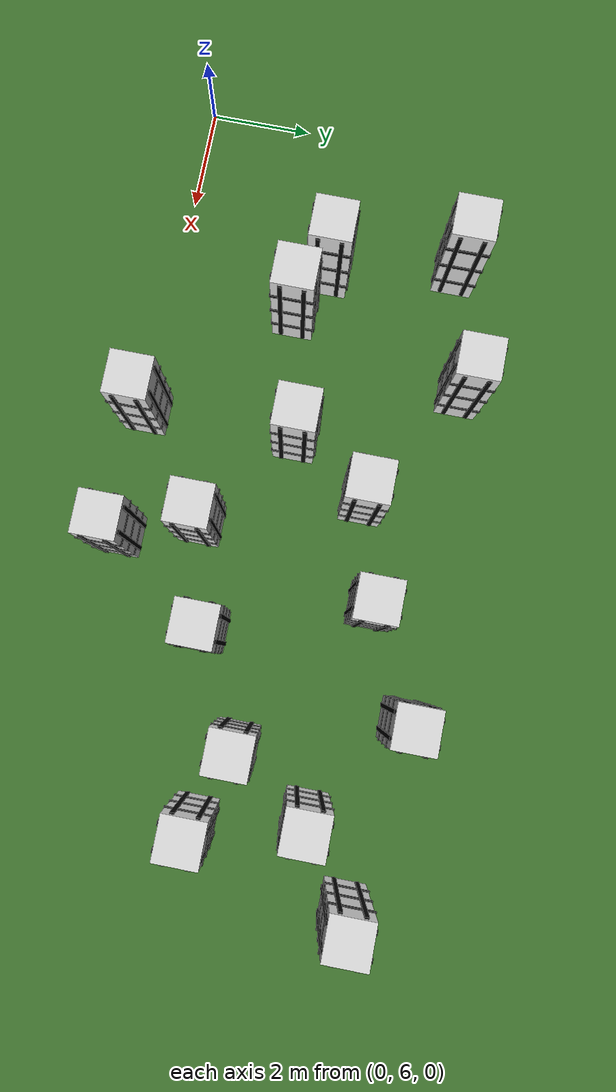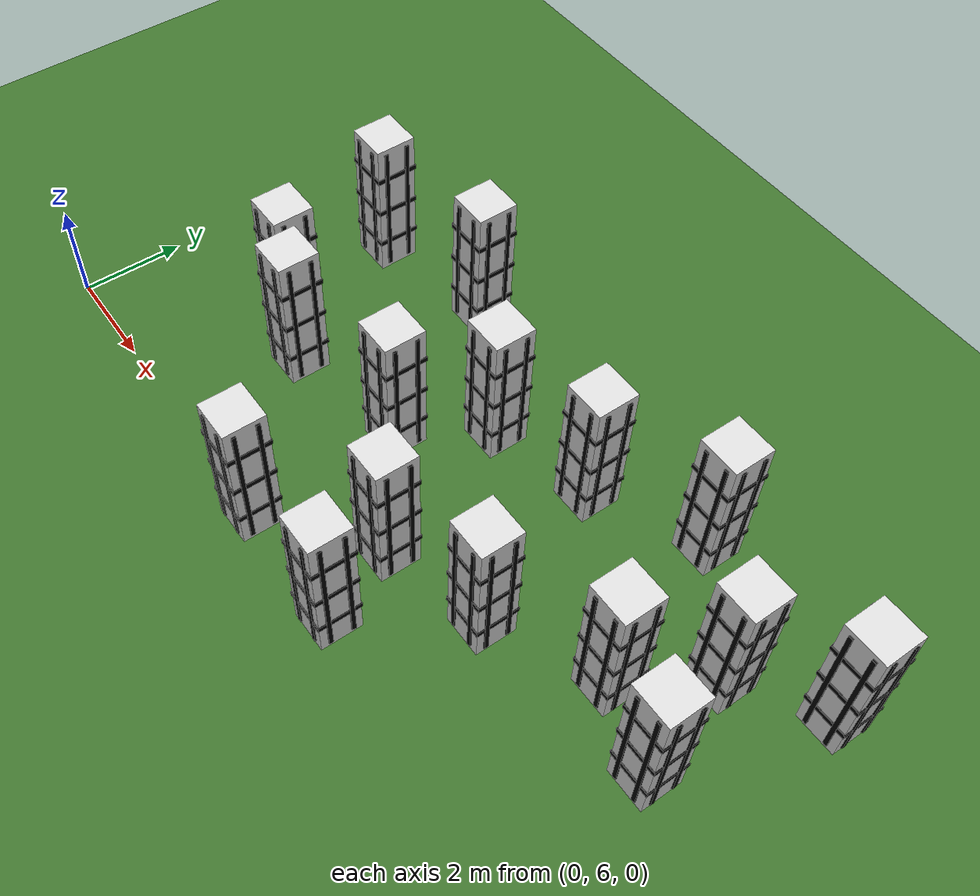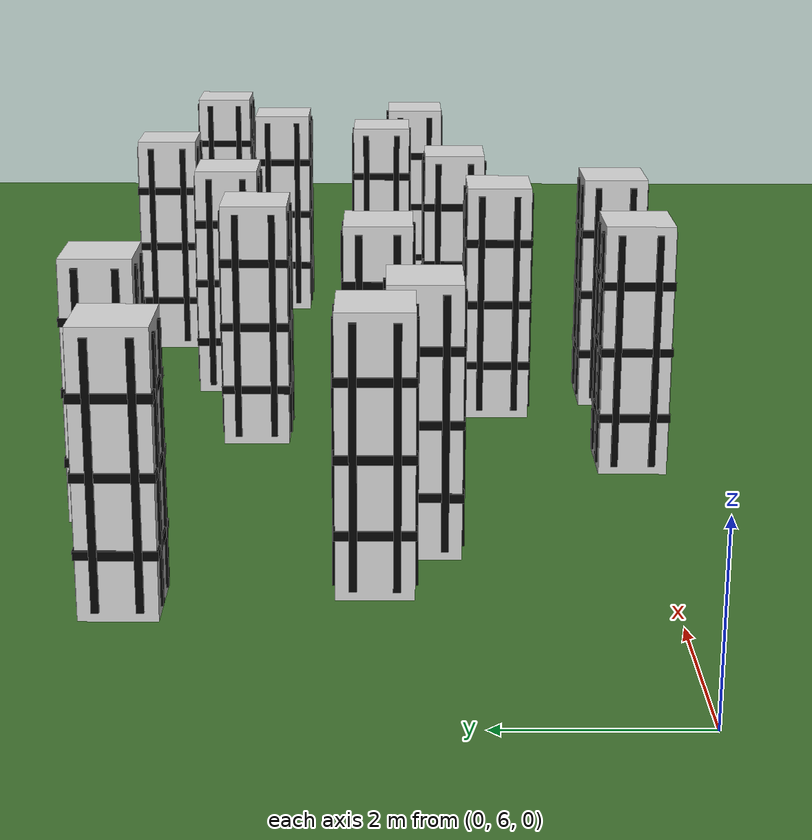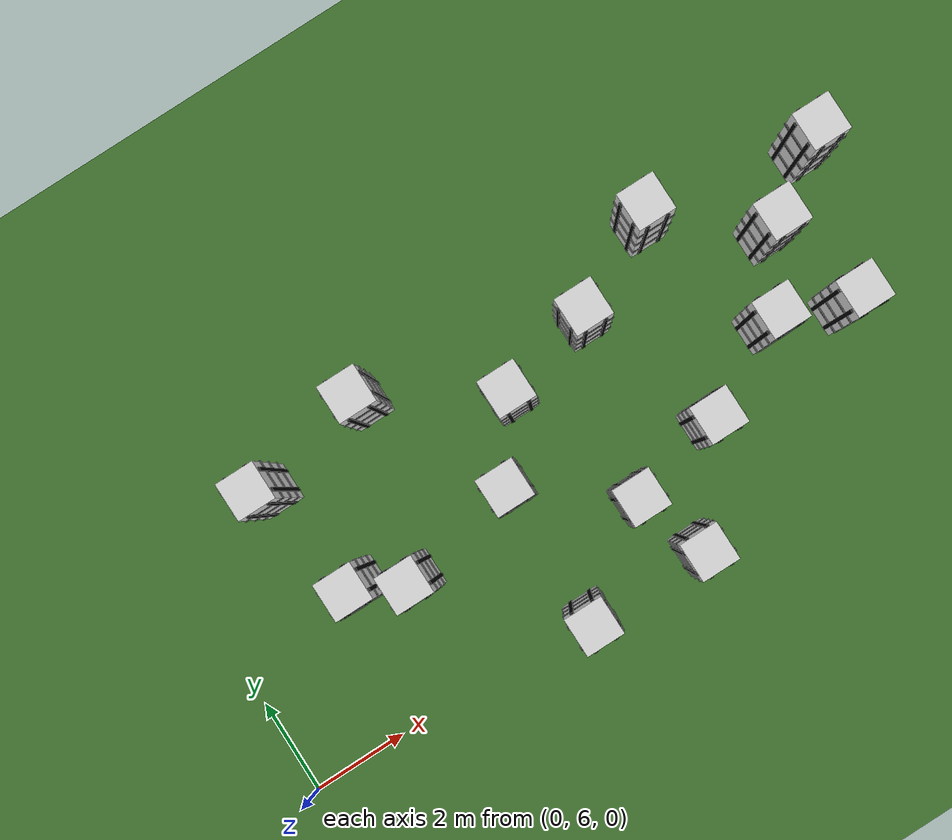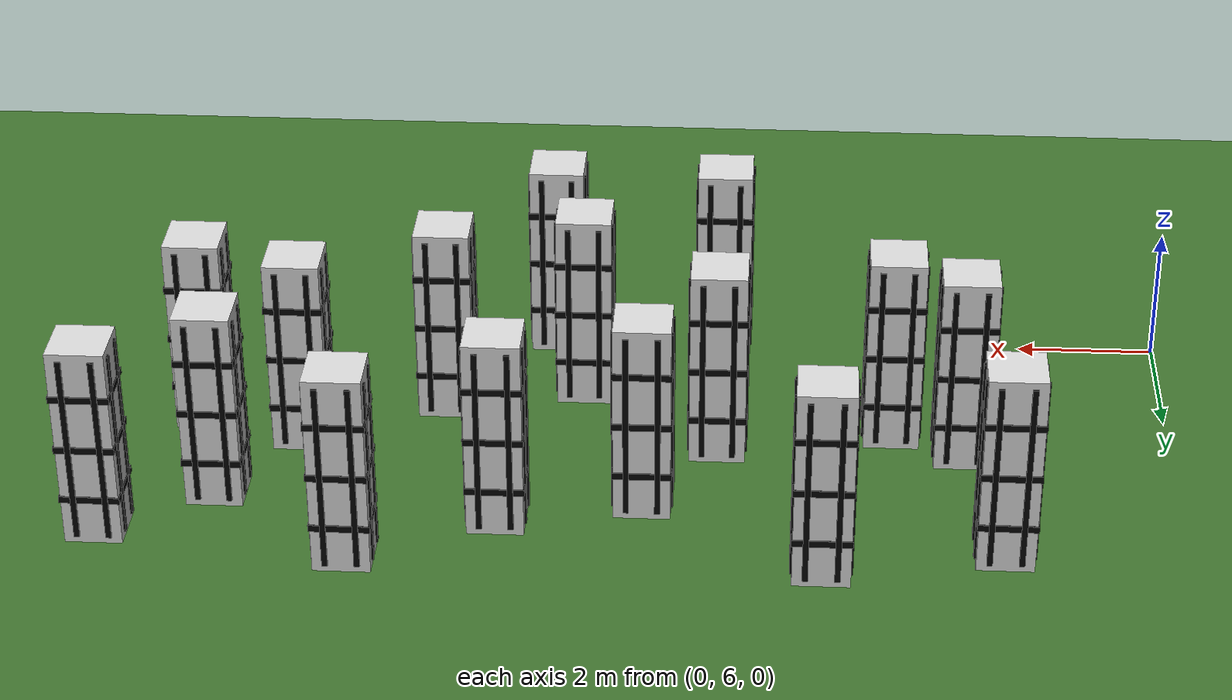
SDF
<sdf version="1.6">
 <world name="dense_world_complex">
  <model name="ground">
   <static>1</static>
   <link name="link">
    <collision name="collision"><geometry><box><size>45 35 0.1</size></box></geometry></collision>
    <visual name="visual">
     <geometry><box><size>45 35 0.1</size></box></geometry>
     <material><ambient>0.25 0.45 0.18 1</ambient><diffuse>0.25 0.45 0.18 1</diffuse></material>
    </visual>
   </link>
   <pose>3 2 -0.05 0 0 0</pose>
  </model>
  <model name="obs_14">
   <static>1</static>
   <pose>2.5 11.5 1.5 0 0 0</pose>
   <link name="link">
    <collision name="collision"><geometry><box><size>0.8 0.8 3.0</size></box></geometry></collision>
    <visual name="body">
     <geometry><box><size>0.8 0.8 3.0</size></box></geometry>
     <material><ambient>0.85 0.85 0.85 1</ambient><diffuse>0.85 0.85 0.85 1</diffuse></material>
    </visual>
    <visual name="stripe_h_1">
     <pose>0 0 -0.8 0 0 0</pose>
     <geometry><box><size>0.84 0.84 0.10</size></box></geometry>
     <material><ambient>0.02 0.02 0.02 1</ambient><diffuse>0.02 0.02 0.02 1</diffuse></material>
    </visual>
    <visual name="stripe_h_2">
     <geometry><box><size>0.84 0.84 0.10</size></box></geometry>
     <material><ambient>0.02 0.02 0.02 1</ambient><diffuse>0.02 0.02 0.02 1</diffuse></material>
    </visual>
    <visual name="stripe_h_3">
     <pose>0 0 0.8 0 0 0</pose>
     <geometry><box><size>0.84 0.84 0.10</size></box></geometry>
     <material><ambient>0.02 0.02 0.02 1</ambient><diffuse>0.02 0.02 0.02 1</diffuse></material>
    </visual>
    <visual name="stripe_v_x_1">
     <pose>-0.22 0 0 0 0 0</pose>
     <geometry><box><size>0.08 0.86 2.8</size></box></geometry>
     <material><ambient>0.02 0.02 0.02 1</ambient><diffuse>0.02 0.02 0.02 1</diffuse></material>
    </visual>
    <visual name="stripe_v_x_2">
     <pose>0.22 0 0 0 0 0</pose>
     <geometry><box><size>0.08 0.86 2.8</size></box></geometry>
     <material><ambient>0.02 0.02 0.02 1</ambient><diffuse>0.02 0.02 0.02 1</diffuse></material>
    </visual>
    <visual name="stripe_v_y_1">
     <pose>0 -0.22 0 0 0 0</pose>
     <geometry><box><size>0.86 0.08 2.8</size></box></geometry>
     <material><ambient>0.02 0.02 0.02 1</ambient><diffuse>0.02 0.02 0.02 1</diffuse></material>
    </visual>
    <visual name="stripe_v_y_2">
     <pose>0 0.22 0 0 0 0</pose>
     <geometry><box><size>0.86 0.08 2.8</size></box></geometry>
     <material><ambient>0.02 0.02 0.02 1</ambient><diffuse>0.02 0.02 0.02 1</diffuse></material>
    </visual>
   </link>
  </model>
  <model name="obs_15">
   <static>1</static>
   <pose>4.0 8.5 1.5 0 0 0</pose>
   <link name="link">
    <collision name="collision"><geometry><box><size>0.8 0.8 3.0</size></box></geometry></collision>
    <visual name="body">
     <geometry><box><size>0.8 0.8 3.0</size></box></geometry>
     <material><ambient>0.85 0.85 0.85 1</ambient><diffuse>0.85 0.85 0.85 1</diffuse></material>
    </visual>
    <visual name="stripe_h_1">
     <pose>0 0 -0.8 0 0 0</pose>
     <geometry><box><size>0.84 0.84 0.10</size></box></geometry>
     <material><ambient>0.02 0.02 0.02 1</ambient><diffuse>0.02 0.02 0.02 1</diffuse></material>
    </visual>
    <visual name="stripe_h_2">
     <geometry><box><size>0.84 0.84 0.10</size></box></geometry>
     <material><ambient>0.02 0.02 0.02 1</ambient><diffuse>0.02 0.02 0.02 1</diffuse></material>
    </visual>
    <visual name="stripe_h_3">
     <pose>0 0 0.8 0 0 0</pose>
     <geometry><box><size>0.84 0.84 0.10</size></box></geometry>
     <material><ambient>0.02 0.02 0.02 1</ambient><diffuse>0.02 0.02 0.02 1</diffuse></material>
    </visual>
    <visual name="stripe_v_x_1">
     <pose>-0.22 0 0 0 0 0</pose>
     <geometry><box><size>0.08 0.86 2.8</size></box></geometry>
     <material><ambient>0.02 0.02 0.02 1</ambient><diffuse>0.02 0.02 0.02 1</diffuse></material>
    </visual>
    <visual name="stripe_v_x_2">
     <pose>0.22 0 0 0 0 0</pose>
     <geometry><box><size>0.08 0.86 2.8</size></box></geometry>
     <material><ambient>0.02 0.02 0.02 1</ambient><diffuse>0.02 0.02 0.02 1</diffuse></material>
    </visual>
    <visual name="stripe_v_y_1">
     <pose>0 -0.22 0 0 0 0</pose>
     <geometry><box><size>0.86 0.08 2.8</size></box></geometry>
     <material><ambient>0.02 0.02 0.02 1</ambient><diffuse>0.02 0.02 0.02 1</diffuse></material>
    </visual>
    <visual name="stripe_v_y_2">
     <pose>0 0.22 0 0 0 0</pose>
     <geometry><box><size>0.86 0.08 2.8</size></box></geometry>
     <material><ambient>0.02 0.02 0.02 1</ambient><diffuse>0.02 0.02 0.02 1</diffuse></material>
    </visual>
   </link>
  </model>
  <model name="obs_16">
   <static>1</static>
   <pose>5.0 12.0 1.5 0 0 0</pose>
   <link name="link">
    <collision name="collision"><geometry><box><size>0.8 0.8 3.0</size></box></geometry></collision>
    <visual name="body">
     <geometry><box><size>0.8 0.8 3.0</size></box></geometry>
     <material><ambient>0.85 0.85 0.85 1</ambient><diffuse>0.85 0.85 0.85 1</diffuse></material>
    </visual>
    <visual name="stripe_h_1">
     <pose>0 0 -0.8 0 0 0</pose>
     <geometry><box><size>0.84 0.84 0.10</size></box></geometry>
     <material><ambient>0.02 0.02 0.02 1</ambient><diffuse>0.02 0.02 0.02 1</diffuse></material>
    </visual>
    <visual name="stripe_h_2">
     <geometry><box><size>0.84 0.84 0.10</size></box></geometry>
     <material><ambient>0.02 0.02 0.02 1</ambient><diffuse>0.02 0.02 0.02 1</diffuse></material>
    </visual>
    <visual name="stripe_h_3">
     <pose>0 0 0.8 0 0 0</pose>
     <geometry><box><size>0.84 0.84 0.10</size></box></geometry>
     <material><ambient>0.02 0.02 0.02 1</ambient><diffuse>0.02 0.02 0.02 1</diffuse></material>
    </visual>
    <visual name="stripe_v_x_1">
     <pose>-0.22 0 0 0 0 0</pose>
     <geometry><box><size>0.08 0.86 2.8</size></box></geometry>
     <material><ambient>0.02 0.02 0.02 1</ambient><diffuse>0.02 0.02 0.02 1</diffuse></material>
    </visual>
    <visual name="stripe_v_x_2">
     <pose>0.22 0 0 0 0 0</pose>
     <geometry><box><size>0.08 0.86 2.8</size></box></geometry>
     <material><ambient>0.02 0.02 0.02 1</ambient><diffuse>0.02 0.02 0.02 1</diffuse></material>
    </visual>
    <visual name="stripe_v_y_1">
     <pose>0 -0.22 0 0 0 0</pose>
     <geometry><box><size>0.86 0.08 2.8</size></box></geometry>
     <material><ambient>0.02 0.02 0.02 1</ambient><diffuse>0.02 0.02 0.02 1</diffuse></material>
    </visual>
    <visual name="stripe_v_y_2">
     <pose>0 0.22 0 0 0 0</pose>
     <geometry><box><size>0.86 0.08 2.8</size></box></geometry>
     <material><ambient>0.02 0.02 0.02 1</ambient><diffuse>0.02 0.02 0.02 1</diffuse></material>
    </visual>
   </link>
  </model>
  <model name="obs_17">
   <static>1</static>
   <pose>6.5 6.0 1.5 0 0 0</pose>
   <link name="link">
    <collision name="collision"><geometry><box><size>0.8 0.8 3.0</size></box></geometry></collision>
    <visual name="body">
     <geometry><box><size>0.8 0.8 3.0</size></box></geometry>
     <material><ambient>0.85 0.85 0.85 1</ambient><diffuse>0.85 0.85 0.85 1</diffuse></material>
    </visual>
    <visual name="stripe_h_1">
     <pose>0 0 -0.8 0 0 0</pose>
     <geometry><box><size>0.84 0.84 0.10</size></box></geometry>
     <material><ambient>0.02 0.02 0.02 1</ambient><diffuse>0.02 0.02 0.02 1</diffuse></material>
    </visual>
    <visual name="stripe_h_2">
     <geometry><box><size>0.84 0.84 0.10</size></box></geometry>
     <material><ambient>0.02 0.02 0.02 1</ambient><diffuse>0.02 0.02 0.02 1</diffuse></material>
    </visual>
    <visual name="stripe_h_3">
     <pose>0 0 0.8 0 0 0</pose>
     <geometry><box><size>0.84 0.84 0.10</size></box></geometry>
     <material><ambient>0.02 0.02 0.02 1</ambient><diffuse>0.02 0.02 0.02 1</diffuse></material>
    </visual>
    <visual name="stripe_v_x_1">
     <pose>-0.22 0 0 0 0 0</pose>
     <geometry><box><size>0.08 0.86 2.8</size></box></geometry>
     <material><ambient>0.02 0.02 0.02 1</ambient><diffuse>0.02 0.02 0.02 1</diffuse></material>
    </visual>
    <visual name="stripe_v_x_2">
     <pose>0.22 0 0 0 0 0</pose>
     <geometry><box><size>0.08 0.86 2.8</size></box></geometry>
     <material><ambient>0.02 0.02 0.02 1</ambient><diffuse>0.02 0.02 0.02 1</diffuse></material>
    </visual>
    <visual name="stripe_v_y_1">
     <pose>0 -0.22 0 0 0 0</pose>
     <geometry><box><size>0.86 0.08 2.8</size></box></geometry>
     <material><ambient>0.02 0.02 0.02 1</ambient><diffuse>0.02 0.02 0.02 1</diffuse></material>
    </visual>
    <visual name="stripe_v_y_2">
     <pose>0 0.22 0 0 0 0</pose>
     <geometry><box><size>0.86 0.08 2.8</size></box></geometry>
     <material><ambient>0.02 0.02 0.02 1</ambient><diffuse>0.02 0.02 0.02 1</diffuse></material>
    </visual>
   </link>
  </model>
  <model name="obs_18">
   <static>1</static>
   <pose>7.5 10.5 1.5 0 0 0</pose>
   <link name="link">
    <collision name="collision"><geometry><box><size>0.8 0.8 3.0</size></box></geometry></collision>
    <visual name="body">
     <geometry><box><size>0.8 0.8 3.0</size></box></geometry>
     <material><ambient>0.85 0.85 0.85 1</ambient><diffuse>0.85 0.85 0.85 1</diffuse></material>
    </visual>
    <visual name="stripe_h_1">
     <pose>0 0 -0.8 0 0 0</pose>
     <geometry><box><size>0.84 0.84 0.10</size></box></geometry>
     <material><ambient>0.02 0.02 0.02 1</ambient><diffuse>0.02 0.02 0.02 1</diffuse></material>
    </visual>
    <visual name="stripe_h_2">
     <geometry><box><size>0.84 0.84 0.10</size></box></geometry>
     <material><ambient>0.02 0.02 0.02 1</ambient><diffuse>0.02 0.02 0.02 1</diffuse></material>
    </visual>
    <visual name="stripe_h_3">
     <pose>0 0 0.8 0 0 0</pose>
     <geometry><box><size>0.84 0.84 0.10</size></box></geometry>
     <material><ambient>0.02 0.02 0.02 1</ambient><diffuse>0.02 0.02 0.02 1</diffuse></material>
    </visual>
    <visual name="stripe_v_x_1">
     <pose>-0.22 0 0 0 0 0</pose>
     <geometry><box><size>0.08 0.86 2.8</size></box></geometry>
     <material><ambient>0.02 0.02 0.02 1</ambient><diffuse>0.02 0.02 0.02 1</diffuse></material>
    </visual>
    <visual name="stripe_v_x_2">
     <pose>0.22 0 0 0 0 0</pose>
     <geometry><box><size>0.08 0.86 2.8</size></box></geometry>
     <material><ambient>0.02 0.02 0.02 1</ambient><diffuse>0.02 0.02 0.02 1</diffuse></material>
    </visual>
    <visual name="stripe_v_y_1">
     <pose>0 -0.22 0 0 0 0</pose>
     <geometry><box><size>0.86 0.08 2.8</size></box></geometry>
     <material><ambient>0.02 0.02 0.02 1</ambient><diffuse>0.02 0.02 0.02 1</diffuse></material>
    </visual>
    <visual name="stripe_v_y_2">
     <pose>0 0.22 0 0 0 0</pose>
     <geometry><box><size>0.86 0.08 2.8</size></box></geometry>
     <material><ambient>0.02 0.02 0.02 1</ambient><diffuse>0.02 0.02 0.02 1</diffuse></material>
    </visual>
   </link>
  </model>
  <model name="obs_19">
   <static>1</static>
   <pose>8.5 7.5 1.5 0 0 0</pose>
   <link name="link">
    <collision name="collision"><geometry><box><size>0.8 0.8 3.0</size></box></geometry></collision>
    <visual name="body">
     <geometry><box><size>0.8 0.8 3.0</size></box></geometry>
     <material><ambient>0.85 0.85 0.85 1</ambient><diffuse>0.85 0.85 0.85 1</diffuse></material>
    </visual>
    <visual name="stripe_h_1">
     <pose>0 0 -0.8 0 0 0</pose>
     <geometry><box><size>0.84 0.84 0.10</size></box></geometry>
     <material><ambient>0.02 0.02 0.02 1</ambient><diffuse>0.02 0.02 0.02 1</diffuse></material>
    </visual>
    <visual name="stripe_h_2">
     <geometry><box><size>0.84 0.84 0.10</size></box></geometry>
     <material><ambient>0.02 0.02 0.02 1</ambient><diffuse>0.02 0.02 0.02 1</diffuse></material>
    </visual>
    <visual name="stripe_h_3">
     <pose>0 0 0.8 0 0 0</pose>
     <geometry><box><size>0.84 0.84 0.10</size></box></geometry>
     <material><ambient>0.02 0.02 0.02 1</ambient><diffuse>0.02 0.02 0.02 1</diffuse></material>
    </visual>
    <visual name="stripe_v_x_1">
     <pose>-0.22 0 0 0 0 0</pose>
     <geometry><box><size>0.08 0.86 2.8</size></box></geometry>
     <material><ambient>0.02 0.02 0.02 1</ambient><diffuse>0.02 0.02 0.02 1</diffuse></material>
    </visual>
    <visual name="stripe_v_x_2">
     <pose>0.22 0 0 0 0 0</pose>
     <geometry><box><size>0.08 0.86 2.8</size></box></geometry>
     <material><ambient>0.02 0.02 0.02 1</ambient><diffuse>0.02 0.02 0.02 1</diffuse></material>
    </visual>
    <visual name="stripe_v_y_1">
     <pose>0 -0.22 0 0 0 0</pose>
     <geometry><box><size>0.86 0.08 2.8</size></box></geometry>
     <material><ambient>0.02 0.02 0.02 1</ambient><diffuse>0.02 0.02 0.02 1</diffuse></material>
    </visual>
    <visual name="stripe_v_y_2">
     <pose>0 0.22 0 0 0 0</pose>
     <geometry><box><size>0.86 0.08 2.8</size></box></geometry>
     <material><ambient>0.02 0.02 0.02 1</ambient><diffuse>0.02 0.02 0.02 1</diffuse></material>
    </visual>
   </link>
  </model>
  <model name="obs_20">
   <static>1</static>
   <pose>9.5 11.0 1.5 0 0 0</pose>
   <link name="link">
    <collision name="collision"><geometry><box><size>0.8 0.8 3.0</size></box></geometry></collision>
    <visual name="body">
     <geometry><box><size>0.8 0.8 3.0</size></box></geometry>
     <material><ambient>0.85 0.85 0.85 1</ambient><diffuse>0.85 0.85 0.85 1</diffuse></material>
    </visual>
    <visual name="stripe_h_1">
     <pose>0 0 -0.8 0 0 0</pose>
     <geometry><box><size>0.84 0.84 0.10</size></box></geometry>
     <material><ambient>0.02 0.02 0.02 1</ambient><diffuse>0.02 0.02 0.02 1</diffuse></material>
    </visual>
    <visual name="stripe_h_2">
     <geometry><box><size>0.84 0.84 0.10</size></box></geometry>
     <material><ambient>0.02 0.02 0.02 1</ambient><diffuse>0.02 0.02 0.02 1</diffuse></material>
    </visual>
    <visual name="stripe_h_3">
     <pose>0 0 0.8 0 0 0</pose>
     <geometry><box><size>0.84 0.84 0.10</size></box></geometry>
     <material><ambient>0.02 0.02 0.02 1</ambient><diffuse>0.02 0.02 0.02 1</diffuse></material>
    </visual>
    <visual name="stripe_v_x_1">
     <pose>-0.22 0 0 0 0 0</pose>
     <geometry><box><size>0.08 0.86 2.8</size></box></geometry>
     <material><ambient>0.02 0.02 0.02 1</ambient><diffuse>0.02 0.02 0.02 1</diffuse></material>
    </visual>
    <visual name="stripe_v_x_2">
     <pose>0.22 0 0 0 0 0</pose>
     <geometry><box><size>0.08 0.86 2.8</size></box></geometry>
     <material><ambient>0.02 0.02 0.02 1</ambient><diffuse>0.02 0.02 0.02 1</diffuse></material>
    </visual>
    <visual name="stripe_v_y_1">
     <pose>0 -0.22 0 0 0 0</pose>
     <geometry><box><size>0.86 0.08 2.8</size></box></geometry>
     <material><ambient>0.02 0.02 0.02 1</ambient><diffuse>0.02 0.02 0.02 1</diffuse></material>
    </visual>
    <visual name="stripe_v_y_2">
     <pose>0 0.22 0 0 0 0</pose>
     <geometry><box><size>0.86 0.08 2.8</size></box></geometry>
     <material><ambient>0.02 0.02 0.02 1</ambient><diffuse>0.02 0.02 0.02 1</diffuse></material>
    </visual>
   </link>
  </model>
  <model name="obs_21">
   <static>1</static>
   <pose>10.5 8.0 1.5 0 0 0</pose>
   <link name="link">
    <collision name="collision"><geometry><box><size>0.8 0.8 3.0</size></box></geometry></collision>
    <visual name="body">
     <geometry><box><size>0.8 0.8 3.0</size></box></geometry>
     <material><ambient>0.85 0.85 0.85 1</ambient><diffuse>0.85 0.85 0.85 1</diffuse></material>
    </visual>
    <visual name="stripe_h_1">
     <pose>0 0 -0.8 0 0 0</pose>
     <geometry><box><size>0.84 0.84 0.10</size></box></geometry>
     <material><ambient>0.02 0.02 0.02 1</ambient><diffuse>0.02 0.02 0.02 1</diffuse></material>
    </visual>
    <visual name="stripe_h_2">
     <geometry><box><size>0.84 0.84 0.10</size></box></geometry>
     <material><ambient>0.02 0.02 0.02 1</ambient><diffuse>0.02 0.02 0.02 1</diffuse></material>
    </visual>
    <visual name="stripe_h_3">
     <pose>0 0 0.8 0 0 0</pose>
     <geometry><box><size>0.84 0.84 0.10</size></box></geometry>
     <material><ambient>0.02 0.02 0.02 1</ambient><diffuse>0.02 0.02 0.02 1</diffuse></material>
    </visual>
    <visual name="stripe_v_x_1">
     <pose>-0.22 0 0 0 0 0</pose>
     <geometry><box><size>0.08 0.86 2.8</size></box></geometry>
     <material><ambient>0.02 0.02 0.02 1</ambient><diffuse>0.02 0.02 0.02 1</diffuse></material>
    </visual>
    <visual name="stripe_v_x_2">
     <pose>0.22 0 0 0 0 0</pose>
     <geometry><box><size>0.08 0.86 2.8</size></box></geometry>
     <material><ambient>0.02 0.02 0.02 1</ambient><diffuse>0.02 0.02 0.02 1</diffuse></material>
    </visual>
    <visual name="stripe_v_y_1">
     <pose>0 -0.22 0 0 0 0</pose>
     <geometry><box><size>0.86 0.08 2.8</size></box></geometry>
     <material><ambient>0.02 0.02 0.02 1</ambient><diffuse>0.02 0.02 0.02 1</diffuse></material>
    </visual>
    <visual name="stripe_v_y_2">
     <pose>0 0.22 0 0 0 0</pose>
     <geometry><box><size>0.86 0.08 2.8</size></box></geometry>
     <material><ambient>0.02 0.02 0.02 1</ambient><diffuse>0.02 0.02 0.02 1</diffuse></material>
    </visual>
   </link>
  </model>
  <model name="obs_22">
   <static>1</static>
   <pose>11.5 12.0 1.5 0 0 0</pose>
   <link name="link">
    <collision name="collision"><geometry><box><size>0.8 0.8 3.0</size></box></geometry></collision>
    <visual name="body">
     <geometry><box><size>0.8 0.8 3.0</size></box></geometry>
     <material><ambient>0.85 0.85 0.85 1</ambient><diffuse>0.85 0.85 0.85 1</diffuse></material>
    </visual>
    <visual name="stripe_h_1">
     <pose>0 0 -0.8 0 0 0</pose>
     <geometry><box><size>0.84 0.84 0.10</size></box></geometry>
     <material><ambient>0.02 0.02 0.02 1</ambient><diffuse>0.02 0.02 0.02 1</diffuse></material>
    </visual>
    <visual name="stripe_h_2">
     <geometry><box><size>0.84 0.84 0.10</size></box></geometry>
     <material><ambient>0.02 0.02 0.02 1</ambient><diffuse>0.02 0.02 0.02 1</diffuse></material>
    </visual>
    <visual name="stripe_h_3">
     <pose>0 0 0.8 0 0 0</pose>
     <geometry><box><size>0.84 0.84 0.10</size></box></geometry>
     <material><ambient>0.02 0.02 0.02 1</ambient><diffuse>0.02 0.02 0.02 1</diffuse></material>
    </visual>
    <visual name="stripe_v_x_1">
     <pose>-0.22 0 0 0 0 0</pose>
     <geometry><box><size>0.08 0.86 2.8</size></box></geometry>
     <material><ambient>0.02 0.02 0.02 1</ambient><diffuse>0.02 0.02 0.02 1</diffuse></material>
    </visual>
    <visual name="stripe_v_x_2">
     <pose>0.22 0 0 0 0 0</pose>
     <geometry><box><size>0.08 0.86 2.8</size></box></geometry>
     <material><ambient>0.02 0.02 0.02 1</ambient><diffuse>0.02 0.02 0.02 1</diffuse></material>
    </visual>
    <visual name="stripe_v_y_1">
     <pose>0 -0.22 0 0 0 0</pose>
     <geometry><box><size>0.86 0.08 2.8</size></box></geometry>
     <material><ambient>0.02 0.02 0.02 1</ambient><diffuse>0.02 0.02 0.02 1</diffuse></material>
    </visual>
    <visual name="stripe_v_y_2">
     <pose>0 0.22 0 0 0 0</pose>
     <geometry><box><size>0.86 0.08 2.8</size></box></geometry>
     <material><ambient>0.02 0.02 0.02 1</ambient><diffuse>0.02 0.02 0.02 1</diffuse></material>
    </visual>
   </link>
  </model>
  <model name="obs_23">
   <static>1</static>
   <pose>12.5 9.0 1.5 0 0 0</pose>
   <link name="link">
    <collision name="collision"><geometry><box><size>0.8 0.8 3.0</size></box></geometry></collision>
    <visual name="body">
     <geometry><box><size>0.8 0.8 3.0</size></box></geometry>
     <material><ambient>0.85 0.85 0.85 1</ambient><diffuse>0.85 0.85 0.85 1</diffuse></material>
    </visual>
    <visual name="stripe_h_1">
     <pose>0 0 -0.8 0 0 0</pose>
     <geometry><box><size>0.84 0.84 0.10</size></box></geometry>
     <material><ambient>0.02 0.02 0.02 1</ambient><diffuse>0.02 0.02 0.02 1</diffuse></material>
    </visual>
    <visual name="stripe_h_2">
     <geometry><box><size>0.84 0.84 0.10</size></box></geometry>
     <material><ambient>0.02 0.02 0.02 1</ambient><diffuse>0.02 0.02 0.02 1</diffuse></material>
    </visual>
    <visual name="stripe_h_3">
     <pose>0 0 0.8 0 0 0</pose>
     <geometry><box><size>0.84 0.84 0.10</size></box></geometry>
     <material><ambient>0.02 0.02 0.02 1</ambient><diffuse>0.02 0.02 0.02 1</diffuse></material>
    </visual>
    <visual name="stripe_v_x_1">
     <pose>-0.22 0 0 0 0 0</pose>
     <geometry><box><size>0.08 0.86 2.8</size></box></geometry>
     <material><ambient>0.02 0.02 0.02 1</ambient><diffuse>0.02 0.02 0.02 1</diffuse></material>
    </visual>
    <visual name="stripe_v_x_2">
     <pose>0.22 0 0 0 0 0</pose>
     <geometry><box><size>0.08 0.86 2.8</size></box></geometry>
     <material><ambient>0.02 0.02 0.02 1</ambient><diffuse>0.02 0.02 0.02 1</diffuse></material>
    </visual>
    <visual name="stripe_v_y_1">
     <pose>0 -0.22 0 0 0 0</pose>
     <geometry><box><size>0.86 0.08 2.8</size></box></geometry>
     <material><ambient>0.02 0.02 0.02 1</ambient><diffuse>0.02 0.02 0.02 1</diffuse></material>
    </visual>
    <visual name="stripe_v_y_2">
     <pose>0 0.22 0 0 0 0</pose>
     <geometry><box><size>0.86 0.08 2.8</size></box></geometry>
     <material><ambient>0.02 0.02 0.02 1</ambient><diffuse>0.02 0.02 0.02 1</diffuse></material>
    </visual>
   </link>
  </model>
  <model name="obs_24">
   <static>1</static>
   <pose>13.5 10.5 1.5 0 0 0</pose>
   <link name="link">
    <collision name="collision"><geometry><box><size>0.8 0.8 3.0</size></box></geometry></collision>
    <visual name="body">
     <geometry><box><size>0.8 0.8 3.0</size></box></geometry>
     <material><ambient>0.85 0.85 0.85 1</ambient><diffuse>0.85 0.85 0.85 1</diffuse></material>
    </visual>
    <visual name="stripe_h_1">
     <pose>0 0 -0.8 0 0 0</pose>
     <geometry><box><size>0.84 0.84 0.10</size></box></geometry>
     <material><ambient>0.02 0.02 0.02 1</ambient><diffuse>0.02 0.02 0.02 1</diffuse></material>
    </visual>
    <visual name="stripe_h_2">
     <geometry><box><size>0.84 0.84 0.10</size></box></geometry>
     <material><ambient>0.02 0.02 0.02 1</ambient><diffuse>0.02 0.02 0.02 1</diffuse></material>
    </visual>
    <visual name="stripe_h_3">
     <pose>0 0 0.8 0 0 0</pose>
     <geometry><box><size>0.84 0.84 0.10</size></box></geometry>
     <material><ambient>0.02 0.02 0.02 1</ambient><diffuse>0.02 0.02 0.02 1</diffuse></material>
    </visual>
    <visual name="stripe_v_x_1">
     <pose>-0.22 0 0 0 0 0</pose>
     <geometry><box><size>0.08 0.86 2.8</size></box></geometry>
     <material><ambient>0.02 0.02 0.02 1</ambient><diffuse>0.02 0.02 0.02 1</diffuse></material>
    </visual>
    <visual name="stripe_v_x_2">
     <pose>0.22 0 0 0 0 0</pose>
     <geometry><box><size>0.08 0.86 2.8</size></box></geometry>
     <material><ambient>0.02 0.02 0.02 1</ambient><diffuse>0.02 0.02 0.02 1</diffuse></material>
    </visual>
    <visual name="stripe_v_y_1">
     <pose>0 -0.22 0 0 0 0</pose>
     <geometry><box><size>0.86 0.08 2.8</size></box></geometry>
     <material><ambient>0.02 0.02 0.02 1</ambient><diffuse>0.02 0.02 0.02 1</diffuse></material>
    </visual>
    <visual name="stripe_v_y_2">
     <pose>0 0.22 0 0 0 0</pose>
     <geometry><box><size>0.86 0.08 2.8</size></box></geometry>
     <material><ambient>0.02 0.02 0.02 1</ambient><diffuse>0.02 0.02 0.02 1</diffuse></material>
    </visual>
   </link>
  </model>
  <model name="obs_25">
   <static>1</static>
   <pose>15.0 11.5 1.5 0 0 0</pose>
   <link name="link">
    <collision name="collision"><geometry><box><size>0.8 0.8 3.0</size></box></geometry></collision>
    <visual name="body">
     <geometry><box><size>0.8 0.8 3.0</size></box></geometry>
     <material><ambient>0.85 0.85 0.85 1</ambient><diffuse>0.85 0.85 0.85 1</diffuse></material>
    </visual>
    <visual name="stripe_h_1">
     <pose>0 0 -0.8 0 0 0</pose>
     <geometry><box><size>0.84 0.84 0.10</size></box></geometry>
     <material><ambient>0.02 0.02 0.02 1</ambient><diffuse>0.02 0.02 0.02 1</diffuse></material>
    </visual>
    <visual name="stripe_h_2">
     <geometry><box><size>0.84 0.84 0.10</size></box></geometry>
     <material><ambient>0.02 0.02 0.02 1</ambient><diffuse>0.02 0.02 0.02 1</diffuse></material>
    </visual>
    <visual name="stripe_h_3">
     <pose>0 0 0.8 0 0 0</pose>
     <geometry><box><size>0.84 0.84 0.10</size></box></geometry>
     <material><ambient>0.02 0.02 0.02 1</ambient><diffuse>0.02 0.02 0.02 1</diffuse></material>
    </visual>
    <visual name="stripe_v_x_1">
     <pose>-0.22 0 0 0 0 0</pose>
     <geometry><box><size>0.08 0.86 2.8</size></box></geometry>
     <material><ambient>0.02 0.02 0.02 1</ambient><diffuse>0.02 0.02 0.02 1</diffuse></material>
    </visual>
    <visual name="stripe_v_x_2">
     <pose>0.22 0 0 0 0 0</pose>
     <geometry><box><size>0.08 0.86 2.8</size></box></geometry>
     <material><ambient>0.02 0.02 0.02 1</ambient><diffuse>0.02 0.02 0.02 1</diffuse></material>
    </visual>
    <visual name="stripe_v_y_1">
     <pose>0 -0.22 0 0 0 0</pose>
     <geometry><box><size>0.86 0.08 2.8</size></box></geometry>
     <material><ambient>0.02 0.02 0.02 1</ambient><diffuse>0.02 0.02 0.02 1</diffuse></material>
    </visual>
    <visual name="stripe_v_y_2">
     <pose>0 0.22 0 0 0 0</pose>
     <geometry><box><size>0.86 0.08 2.8</size></box></geometry>
     <material><ambient>0.02 0.02 0.02 1</ambient><diffuse>0.02 0.02 0.02 1</diffuse></material>
    </visual>
   </link>
  </model>
  <model name="obs_29">
   <static>1</static>
   <pose>3.0 9.0 1.5 0 0 0</pose>
   <link name="link">
    <collision name="collision"><geometry><box><size>0.8 0.8 3.0</size></box></geometry></collision>
    <visual name="body">
     <geometry><box><size>0.8 0.8 3.0</size></box></geometry>
     <material><ambient>0.85 0.85 0.85 1</ambient><diffuse>0.85 0.85 0.85 1</diffuse></material>
    </visual>
    <visual name="stripe_h_1">
     <pose>0 0 -0.8 0 0 0</pose>
     <geometry><box><size>0.84 0.84 0.10</size></box></geometry>
     <material><ambient>0.02 0.02 0.02 1</ambient><diffuse>0.02 0.02 0.02 1</diffuse></material>
    </visual>
    <visual name="stripe_h_2">
     <geometry><box><size>0.84 0.84 0.10</size></box></geometry>
     <material><ambient>0.02 0.02 0.02 1</ambient><diffuse>0.02 0.02 0.02 1</diffuse></material>
    </visual>
    <visual name="stripe_h_3">
     <pose>0 0 0.8 0 0 0</pose>
     <geometry><box><size>0.84 0.84 0.10</size></box></geometry>
     <material><ambient>0.02 0.02 0.02 1</ambient><diffuse>0.02 0.02 0.02 1</diffuse></material>
    </visual>
    <visual name="stripe_v_x_1">
     <pose>-0.22 0 0 0 0 0</pose>
     <geometry><box><size>0.08 0.86 2.8</size></box></geometry>
     <material><ambient>0.02 0.02 0.02 1</ambient><diffuse>0.02 0.02 0.02 1</diffuse></material>
    </visual>
    <visual name="stripe_v_x_2">
     <pose>0.22 0 0 0 0 0</pose>
     <geometry><box><size>0.08 0.86 2.8</size></box></geometry>
     <material><ambient>0.02 0.02 0.02 1</ambient><diffuse>0.02 0.02 0.02 1</diffuse></material>
    </visual>
    <visual name="stripe_v_y_1">
     <pose>0 -0.22 0 0 0 0</pose>
     <geometry><box><size>0.86 0.08 2.8</size></box></geometry>
     <material><ambient>0.02 0.02 0.02 1</ambient><diffuse>0.02 0.02 0.02 1</diffuse></material>
    </visual>
    <visual name="stripe_v_y_2">
     <pose>0 0.22 0 0 0 0</pose>
     <geometry><box><size>0.86 0.08 2.8</size></box></geometry>
     <material><ambient>0.02 0.02 0.02 1</ambient><diffuse>0.02 0.02 0.02 1</diffuse></material>
    </visual>
   </link>
  </model>
  <model name="obs_30">
   <static>1</static>
   <pose>6.5 9.0 1.5 0 0 0</pose>
   <link name="link">
    <collision name="collision"><geometry><box><size>0.8 0.8 3.0</size></box></geometry></collision>
    <visual name="body">
     <geometry><box><size>0.8 0.8 3.0</size></box></geometry>
     <material><ambient>0.85 0.85 0.85 1</ambient><diffuse>0.85 0.85 0.85 1</diffuse></material>
    </visual>
    <visual name="stripe_h_1">
     <pose>0 0 -0.8 0 0 0</pose>
     <geometry><box><size>0.84 0.84 0.10</size></box></geometry>
     <material><ambient>0.02 0.02 0.02 1</ambient><diffuse>0.02 0.02 0.02 1</diffuse></material>
    </visual>
    <visual name="stripe_h_2">
     <geometry><box><size>0.84 0.84 0.10</size></box></geometry>
     <material><ambient>0.02 0.02 0.02 1</ambient><diffuse>0.02 0.02 0.02 1</diffuse></material>
    </visual>
    <visual name="stripe_h_3">
     <pose>0 0 0.8 0 0 0</pose>
     <geometry><box><size>0.84 0.84 0.10</size></box></geometry>
     <material><ambient>0.02 0.02 0.02 1</ambient><diffuse>0.02 0.02 0.02 1</diffuse></material>
    </visual>
    <visual name="stripe_v_x_1">
     <pose>-0.22 0 0 0 0 0</pose>
     <geometry><box><size>0.08 0.86 2.8</size></box></geometry>
     <material><ambient>0.02 0.02 0.02 1</ambient><diffuse>0.02 0.02 0.02 1</diffuse></material>
    </visual>
    <visual name="stripe_v_x_2">
     <pose>0.22 0 0 0 0 0</pose>
     <geometry><box><size>0.08 0.86 2.8</size></box></geometry>
     <material><ambient>0.02 0.02 0.02 1</ambient><diffuse>0.02 0.02 0.02 1</diffuse></material>
    </visual>
    <visual name="stripe_v_y_1">
     <pose>0 -0.22 0 0 0 0</pose>
     <geometry><box><size>0.86 0.08 2.8</size></box></geometry>
     <material><ambient>0.02 0.02 0.02 1</ambient><diffuse>0.02 0.02 0.02 1</diffuse></material>
    </visual>
    <visual name="stripe_v_y_2">
     <pose>0 0.22 0 0 0 0</pose>
     <geometry><box><size>0.86 0.08 2.8</size></box></geometry>
     <material><ambient>0.02 0.02 0.02 1</ambient><diffuse>0.02 0.02 0.02 1</diffuse></material>
    </visual>
   </link>
  </model>
  <model name="obs_31">
   <static>1</static>
   <pose>9.0 6.0 1.5 0 0 0</pose>
   <link name="link">
    <collision name="collision"><geometry><box><size>0.8 0.8 3.0</size></box></geometry></collision>
    <visual name="body">
     <geometry><box><size>0.8 0.8 3.0</size></box></geometry>
     <material><ambient>0.85 0.85 0.85 1</ambient><diffuse>0.85 0.85 0.85 1</diffuse></material>
    </visual>
    <visual name="stripe_h_1">
     <pose>0 0 -0.8 0 0 0</pose>
     <geometry><box><size>0.84 0.84 0.10</size></box></geometry>
     <material><ambient>0.02 0.02 0.02 1</ambient><diffuse>0.02 0.02 0.02 1</diffuse></material>
    </visual>
    <visual name="stripe_h_2">
     <geometry><box><size>0.84 0.84 0.10</size></box></geometry>
     <material><ambient>0.02 0.02 0.02 1</ambient><diffuse>0.02 0.02 0.02 1</diffuse></material>
    </visual>
    <visual name="stripe_h_3">
     <pose>0 0 0.8 0 0 0</pose>
     <geometry><box><size>0.84 0.84 0.10</size></box></geometry>
     <material><ambient>0.02 0.02 0.02 1</ambient><diffuse>0.02 0.02 0.02 1</diffuse></material>
    </visual>
    <visual name="stripe_v_x_1">
     <pose>-0.22 0 0 0 0 0</pose>
     <geometry><box><size>0.08 0.86 2.8</size></box></geometry>
     <material><ambient>0.02 0.02 0.02 1</ambient><diffuse>0.02 0.02 0.02 1</diffuse></material>
    </visual>
    <visual name="stripe_v_x_2">
     <pose>0.22 0 0 0 0 0</pose>
     <geometry><box><size>0.08 0.86 2.8</size></box></geometry>
     <material><ambient>0.02 0.02 0.02 1</ambient><diffuse>0.02 0.02 0.02 1</diffuse></material>
    </visual>
    <visual name="stripe_v_y_1">
     <pose>0 -0.22 0 0 0 0</pose>
     <geometry><box><size>0.86 0.08 2.8</size></box></geometry>
     <material><ambient>0.02 0.02 0.02 1</ambient><diffuse>0.02 0.02 0.02 1</diffuse></material>
    </visual>
    <visual name="stripe_v_y_2">
     <pose>0 0.22 0 0 0 0</pose>
     <geometry><box><size>0.86 0.08 2.8</size></box></geometry>
     <material><ambient>0.02 0.02 0.02 1</ambient><diffuse>0.02 0.02 0.02 1</diffuse></material>
    </visual>
   </link>
  </model>
  <model name="obs_32">
   <static>1</static>
   <pose>14.0 8.5 1.5 0 0 0</pose>
   <link name="link">
    <collision name="collision"><geometry><box><size>0.8 0.8 3.0</size></box></geometry></collision>
    <visual name="body">
     <geometry><box><size>0.8 0.8 3.0</size></box></geometry>
     <material><ambient>0.85 0.85 0.85 1</ambient><diffuse>0.85 0.85 0.85 1</diffuse></material>
    </visual>
    <visual name="stripe_h_1">
     <pose>0 0 -0.8 0 0 0</pose>
     <geometry><box><size>0.84 0.84 0.10</size></box></geometry>
     <material><ambient>0.02 0.02 0.02 1</ambient><diffuse>0.02 0.02 0.02 1</diffuse></material>
    </visual>
    <visual name="stripe_h_2">
     <geometry><box><size>0.84 0.84 0.10</size></box></geometry>
     <material><ambient>0.02 0.02 0.02 1</ambient><diffuse>0.02 0.02 0.02 1</diffuse></material>
    </visual>
    <visual name="stripe_h_3">
     <pose>0 0 0.8 0 0 0</pose>
     <geometry><box><size>0.84 0.84 0.10</size></box></geometry>
     <material><ambient>0.02 0.02 0.02 1</ambient><diffuse>0.02 0.02 0.02 1</diffuse></material>
    </visual>
    <visual name="stripe_v_x_1">
     <pose>-0.22 0 0 0 0 0</pose>
     <geometry><box><size>0.08 0.86 2.8</size></box></geometry>
     <material><ambient>0.02 0.02 0.02 1</ambient><diffuse>0.02 0.02 0.02 1</diffuse></material>
    </visual>
    <visual name="stripe_v_x_2">
     <pose>0.22 0 0 0 0 0</pose>
     <geometry><box><size>0.08 0.86 2.8</size></box></geometry>
     <material><ambient>0.02 0.02 0.02 1</ambient><diffuse>0.02 0.02 0.02 1</diffuse></material>
    </visual>
    <visual name="stripe_v_y_1">
     <pose>0 -0.22 0 0 0 0</pose>
     <geometry><box><size>0.86 0.08 2.8</size></box></geometry>
     <material><ambient>0.02 0.02 0.02 1</ambient><diffuse>0.02 0.02 0.02 1</diffuse></material>
    </visual>
    <visual name="stripe_v_y_2">
     <pose>0 0.22 0 0 0 0</pose>
     <geometry><box><size>0.86 0.08 2.8</size></box></geometry>
     <material><ambient>0.02 0.02 0.02 1</ambient><diffuse>0.02 0.02 0.02 1</diffuse></material>
    </visual>
   </link>
  </model>
 </world>
</sdf>
